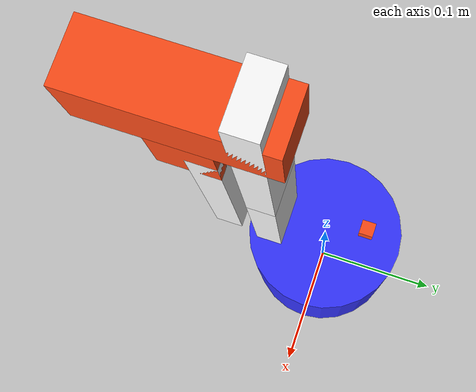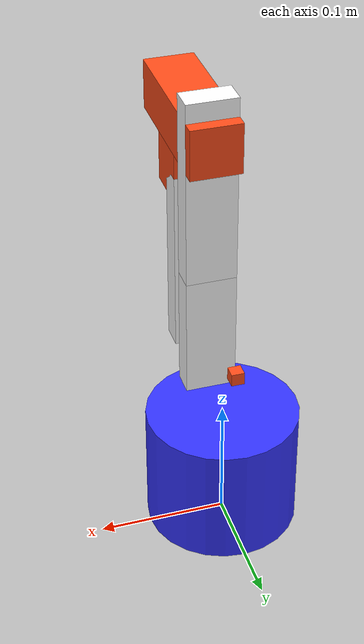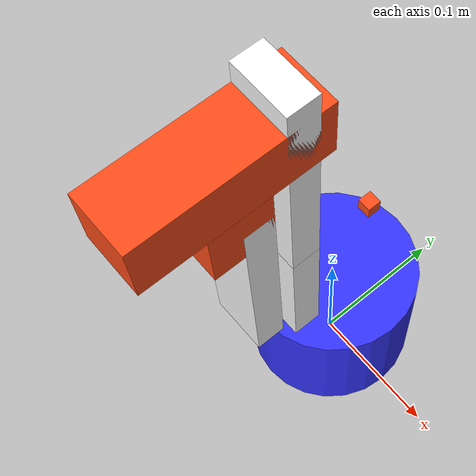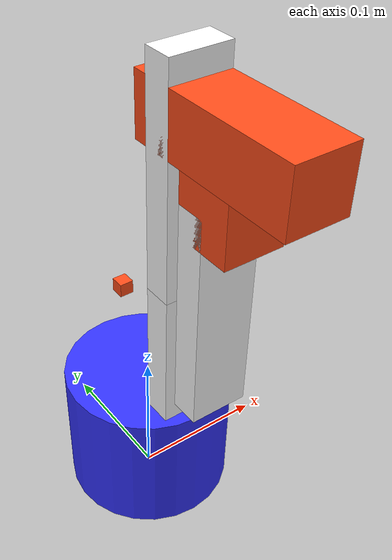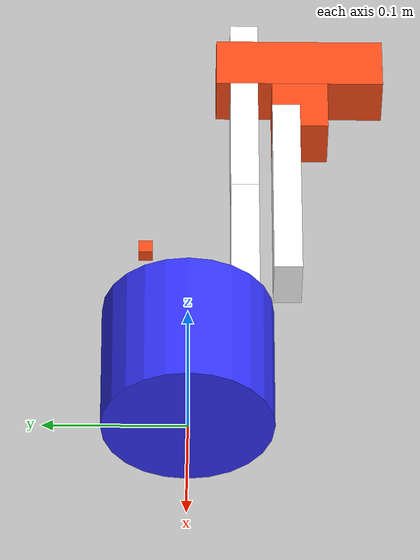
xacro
<?xml version="1.0"?>
<robot xmlns:xacro="http://www.ros.org/wiki/xacro"  name="robot">

     <!-- This is an example of a URDF. -->
    <!-- As we move through the file, new things to note will be pointed out. -->
    <!-- It's not meant an example of GOOD design, but an example of some of the various features of URDF/xacro. -->

    <!-- ROBOT STRUCTURE -->
    <!-- world -->
    <!-- base_joint (fixed) -->
    <!-- base_link (cylinder) -->
    <!-- joint_base_servo (revolute in Z) [motor1]-->
    <!-- servo_link (small box) -->
    <!-- joint_servo_shaft1 (revolute in Y) [motor2]-->
    <!-- shaft1_link (rectangular box) -->
    <!-- joint_shaft1_shaft2 (revolute in Y) [motor3]-->
    <!-- shaft2_link (rectangular box) -->
    <!-- joint_shaft2_shaft3 (revolute in Y) [motor4]-->
    <!-- shaft3_link (rectangular box) -->
    <!-- joint_shaft3_hand (revolute in Y) [motor5]-->
    <!-- hand_link (god fucking knows) -->
    <!-- how to include gripper? maybe theres something like there is for camera -->

    <!-- shafts will have a default size x=0.04 y=0.02 z=0.15 -->

    <!-- This first link called "world" is empty -->
    <link name="world"></link>

    <!-- A simple fixed joint from our empty world link, to our base. -->
    <!-- The base origin is não offset from the world origin. -->
    <joint name="base_joint" type="fixed">
        <origin xyz="0 0 0" rpy="0 0 0"/>
        <parent link="world"/>
        <child link="base_link"/>
    </joint>

    <!-- base_link is a large rectangular plate. Some things to note: -->
    <!-- - We set the visual origin Z to half the box height, so that the link origin sits at the bottom of the box -->
    <!-- - We set the collision to be identical to the visual -->
    <!-- - We specified the colour manually (but still need to enter a name) -->
    <!-- - We specified all the inertial parameters manually -->

    <link name="base_link">   <!-- DONE, i think -->
        <visual>
            <origin xyz="0 0 0.05" rpy="0 0 0"/>
            <geometry>
                <cylinder length="0.1" radius="0.06" />
            </geometry>
            <material name="blue">
                <color rgba="0.2 0.2 1 1"/>
            </material>
        </visual>
        <collision>
            <origin xyz="0 0 0.05" rpy="0 0 0"/>
            <geometry>
                <cylinder length="0.1" radius="0.06" />
            </geometry>
        </collision>
        <inertial>
            <origin xyz="0 0 0.05" rpy="0 0 0"/>
            <mass value="1.5" />
            <inertia ixx="0.001331" ixy="0.0" ixz="0.0" iyy="0.001331" iyz="0.0" izz="0.0027" />
        </inertial>
    </link>

    <joint name="joint_base_servo" type="revolute"> <!-- DONE, i think -->
        <origin xyz="0 0 0.05" rpy="0 0 0"/>
        <parent link="base_link"/>
        <child link="servo_link"/>
        <axis xyz="0 0 1"/>
        <limit lower="-1.57" upper="1.57" velocity="100" effort="100"/> <!-- what do I put in effort and velocity again? -->
    </joint>

    <link name="servo_link"> <!-- DONE, i think -->
        <visual>
            <origin xyz="0 0.03 0.105" rpy="0 0 0"/>
            <geometry>
                <box size="0.01 0.01 0.01" />
            </geometry>
            <material name="orange">
                <color rgba="1 0.3 0.1 1"/>
            </material>
        </visual>
        <collision>
            <origin xyz="0 0.03 0.105" rpy="0 0 0"/>
            <geometry>
                <box size="0.01 0.01 0.01" />
            </geometry>
        </collision>
        <inertial>
            <origin xyz="0 0.03 0.105" rpy="0 0 0"/>
            <mass value="0.05" />
            <inertia ixx="0.0000001" ixy="0.0" ixz="0.0" iyy="0.0000001" iyz="0.0" izz="0.0000001" />
        </inertial>
    </link>

    <joint name="joint_servo_shaft1" type="revolute">  <!-- DONE, i think -->
        <origin xyz="0 -0.05 0" rpy="0 0 0"/>
        <parent link="servo_link"/>
        <child link="shaft1_link"/>
        <axis xyz="0 1 0"/>
        <limit lower="-1.57" upper="1.57" velocity="100" effort="100"/> <!-- what do I put in effort and velocity again? -->
    </joint>

    <link name="shaft1_link">   <!-- DONE, i think -->
        <visual>
            <origin xyz="0 0.01 0.075" rpy="0 0 0"/>
            <geometry>
                <box size="0.04 0.02 0.15" />
            </geometry>
            <material name="white">
                <color rgba="1 1 1 1"/>
            </material>
        </visual>
        <collision>
            <origin xyz="0 0.01 0.075" rpy="0 0 0"/>
            <geometry>
                <box size="0.04 0.02 0.15" />
            </geometry>
        </collision>
        <inertial>
            <origin xyz="0 0.01 0.075" rpy="0 0 0"/>
            <mass value="0.1" />
            <inertia ixx="0.0001908" ixy="0.0" ixz="0.0" iyy="0.0002008" iyz="0.0" izz="0.0000167" />
        </inertial>
    </link>

    <joint name="joint_shaft1_shaft2" type="revolute">  <!-- DONE, i think -->
        <origin xyz="0 -0.01 0.075" rpy="0 0 0"/>
        <parent link="shaft1_link"/>
        <child link="shaft2_link"/>
        <axis xyz="0 1 0"/>
        <limit lower="-1.57" upper="1.57" velocity="100" effort="100"/> <!-- what do I put in effort and velocity again? -->
    </joint>

    <link name="shaft2_link">   <!-- DONE, i think -->
        <visual>
            <origin xyz="0 -0.01 0.075" rpy="0 0 0"/>
            <geometry>
                <box size="0.04 0.02 0.15" />
            </geometry>
            <material name="white">
                <color rgba="1 1 1 1"/>
            </material>
        </visual>
        <collision>
            <origin xyz="0 -0.01 0.075" rpy="0 0 0"/>
            <geometry>
                <box size="0.04 0.02 0.15" />
            </geometry>
        </collision>
        <inertial>
            <origin xyz="0 -0.01 0.075" rpy="0 0 0"/>
            <mass value="0.1" />
            <inertia ixx="0.0001908" ixy="0.0" ixz="0.0" iyy="0.0002008" iyz="0.0" izz="0.0000167" />
        </inertial>
    </link>

    <joint name="joint_shaft2_shaft3" type="revolute">  <!-- DONE, i think -->
        <origin xyz="0 0.01 0.075" rpy="0 0 0"/>
        <parent link="shaft2_link"/>
        <child link="shaft3_link"/>
        <axis xyz="0 1 0"/>
        <limit lower="-1.57" upper="1.57" velocity="100" effort="100"/> <!-- what do I put in effort and velocity again? -->
    </joint>

    <link name="shaft3_link">   <!-- DONE, i think -->
        <visual>
            <origin xyz="0 0.01 0.075" rpy="0 0 0"/>
            <geometry>
                <box size="0.04 0.02 0.15" />
            </geometry>
            <material name="white">
                <color rgba="1 1 1 1"/>
            </material>
        </visual>
        <collision>
            <origin xyz="0 0.01 0.075" rpy="0 0 0"/>
            <geometry>
                <box size="0.04 0.02 0.15" />
            </geometry>
        </collision>
        <inertial>
            <origin xyz="0 0.01 0.075" rpy="0 0 0"/>
            <mass value="0.1" />
            <inertia ixx="0.0001908" ixy="0.0" ixz="0.0" iyy="0.0002008" iyz="0.0" izz="0.0000167" />
        </inertial>
    </link>

    <joint name="joint_shaft3_hand" type="revolute">  <!-- DONE, i think -->
        <origin xyz="0 -0.01 0.075" rpy="0 0 0"/>
        <parent link="shaft3_link"/>
        <child link="hand_link"/>
        <axis xyz="0 1 0"/>
        <limit lower="-1.57" upper="1.57" velocity="100" effort="100"/> <!-- what do I put in effort and velocity again? -->
    </joint>

    <link name="hand_link">  <!-- DONE, i think -->
        <visual>
            <origin xyz="0 -0.02 0" rpy="0 0 0"/>
            <geometry>
                <box size="0.04 0.04 0.04" />
            </geometry>
            <material name="orange">
                <color rgba="1 0.3 0.1 1"/>
            </material>
        </visual>
        <visual>
            <origin xyz="0 -0.02 0.04" rpy="0 0 0"/>
            <geometry>
                <box size="0.04 0.12 0.04" />
            </geometry>
            <material name="orange">
                <color rgba="1 0.3 0.1 1"/>
            </material>
        </visual>
        <collision>
            <origin xyz="0 -0.02 0.04" rpy="0 0 0"/>
            <geometry>
                <box size="0.04 0.12 0.04" />
            </geometry>
        </collision>
        <inertial>
            <origin xyz="0 -0.02 0.02" rpy="0 0 0"/>
            <mass value="1" />
            <inertia ixx="0.001733" ixy="0.0" ixz="0.0" iyy="0.0006667" iyz="0.0" izz="0.001333" />
        </inertial>
    </link>

</robot>
